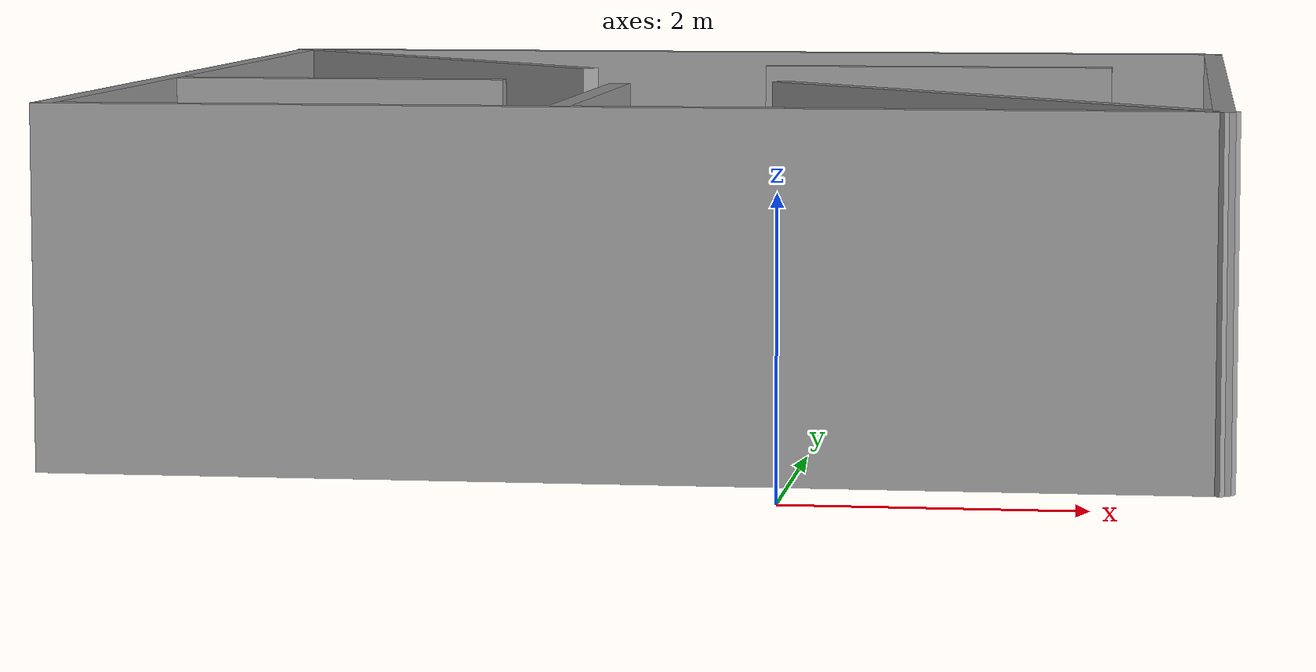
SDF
<?xml version='1.0'?>
<sdf version='1.7'>
  <model name='Untitled'>
    <pose>-1.10638 4.35755 0 0 -0 0</pose>
    <link name='Wall_36'>
      <collision name='Wall_36_Collision'>
        <geometry>
          <box>
            <size>8 0.15 2.5</size>
          </box>
        </geometry>
        <pose>0 0 1.25 0 -0 0</pose>
      </collision>
      <visual name='Wall_36_Visual'>
        <pose>0 0 1.25 0 -0 0</pose>
        <geometry>
          <box>
            <size>8 0.15 2.5</size>
          </box>
        </geometry>
        <material>
          <script>
            <uri>file://media/materials/scripts/gazebo.material</uri>
            <name>Gazebo/Grey</name>
          </script>
          <ambient>1 1 1 1</ambient>
        </material>
        <meta>
          <layer>0</layer>
        </meta>
      </visual>
      <pose>-3.925 0.326484 0 0 -0 -1.5708</pose>
    </link>
    <link name='Wall_37'>
      <collision name='Wall_37_Collision'>
        <geometry>
          <box>
            <size>8 0.15 2.5</size>
          </box>
        </geometry>
        <pose>0 0 1.25 0 -0 0</pose>
      </collision>
      <visual name='Wall_37_Visual'>
        <pose>0 0 1.25 0 -0 0</pose>
        <geometry>
          <box>
            <size>8 0.15 2.5</size>
          </box>
        </geometry>
        <material>
          <script>
            <uri>file://media/materials/scripts/gazebo.material</uri>
            <name>Gazebo/Grey</name>
          </script>
          <ambient>1 1 1 1</ambient>
        </material>
        <meta>
          <layer>0</layer>
        </meta>
      </visual>
      <pose>-0 -3.59852 0 0 -0 0</pose>
    </link>
    <link name='Wall_38'>
      <collision name='Wall_38_Collision'>
        <geometry>
          <box>
            <size>8 0.15 2.5</size>
          </box>
        </geometry>
        <pose>0 0 1.25 0 -0 0</pose>
      </collision>
      <visual name='Wall_38_Visual'>
        <pose>0 0 1.25 0 -0 0</pose>
        <geometry>
          <box>
            <size>8 0.15 2.5</size>
          </box>
        </geometry>
        <material>
          <script>
            <uri>file://media/materials/scripts/gazebo.material</uri>
            <name>Gazebo/Grey</name>
          </script>
          <ambient>1 1 1 1</ambient>
        </material>
        <meta>
          <layer>0</layer>
        </meta>
      </visual>
      <pose>3.925 0.326484 0 0 -0 1.5708</pose>
    </link>
    <link name='Wall_39'>
      <collision name='Wall_39_Collision'>
        <geometry>
          <box>
            <size>8 0.15 2.5</size>
          </box>
        </geometry>
        <pose>0 0 1.25 0 -0 0</pose>
      </collision>
      <visual name='Wall_39_Visual'>
        <pose>0 0 1.25 0 -0 0</pose>
        <geometry>
          <box>
            <size>8 0.15 2.5</size>
          </box>
        </geometry>
        <material>
          <script>
            <uri>file://media/materials/scripts/gazebo.material</uri>
            <name>Gazebo/Grey</name>
          </script>
          <ambient>1 1 1 1</ambient>
        </material>
        <meta>
          <layer>0</layer>
        </meta>
      </visual>
      <pose>-0 4.25148 0 0 -0 3.14159</pose>
    </link>
    <link name='Wall_40'>
      <collision name='Wall_40_Collision'>
        <geometry>
          <box>
            <size>4.25 0.15 2.5</size>
          </box>
        </geometry>
        <pose>0 0 1.25 0 -0 0</pose>
      </collision>
      <visual name='Wall_40_Visual'>
        <pose>0 0 1.25 0 -0 0</pose>
        <geometry>
          <box>
            <size>4.25 0.15 2.5</size>
          </box>
        </geometry>
        <material>
          <script>
            <uri>file://media/materials/scripts/gazebo.material</uri>
            <name>Gazebo/Grey</name>
          </script>
          <ambient>1 1 1 1</ambient>
        </material>
        <meta>
          <layer>0</layer>
        </meta>
      </visual>
      <pose>-2.47543 2.80192 0 0 -0 -0.785398</pose>
    </link>
    <link name='Wall_43'>
      <collision name='Wall_43_Collision'>
        <geometry>
          <box>
            <size>2.75 0.15 2.5</size>
          </box>
        </geometry>
        <pose>0 0 1.25 0 -0 0</pose>
      </collision>
      <visual name='Wall_43_Visual'>
        <pose>0 0 1.25 0 -0 0</pose>
        <geometry>
          <box>
            <size>2.75 0.15 2.5</size>
          </box>
        </geometry>
        <material>
          <script>
            <uri>file://media/materials/scripts/gazebo.material</uri>
            <name>Gazebo/Grey</name>
          </script>
          <ambient>1 1 1 1</ambient>
        </material>
        <meta>
          <layer>0</layer>
        </meta>
      </visual>
      <pose>-0.426988 -2.19059 0 0 -0 -1.5708</pose>
    </link>
    <link name='Wall_45'>
      <collision name='Wall_45_Collision'>
        <geometry>
          <box>
            <size>2.5 0.15 2.5</size>
          </box>
        </geometry>
        <pose>0 0 1.25 0 -0 0</pose>
      </collision>
      <visual name='Wall_45_Visual'>
        <pose>0 0 1.25 0 -0 0</pose>
        <geometry>
          <box>
            <size>2.5 0.15 2.5</size>
          </box>
        </geometry>
        <material>
          <script>
            <uri>file://media/materials/scripts/gazebo.material</uri>
            <name>Gazebo/Grey</name>
          </script>
          <ambient>1 1 1 1</ambient>
        </material>
        <meta>
          <layer>0</layer>
        </meta>
      </visual>
      <pose>-2.61008 -0.400873 0 0 -0 0</pose>
    </link>
    <link name='Wall_47'>
      <collision name='Wall_47_Collision'>
        <geometry>
          <box>
            <size>2.75 0.15 2.5</size>
          </box>
        </geometry>
        <pose>0 0 1.25 0 -0 0</pose>
      </collision>
      <visual name='Wall_47_Visual'>
        <pose>0 0 1.25 0 -0 0</pose>
        <geometry>
          <box>
            <size>2.75 0.15 2.5</size>
          </box>
        </geometry>
        <material>
          <script>
            <uri>file://media/materials/scripts/gazebo.material</uri>
            <name>Gazebo/Grey</name>
          </script>
          <ambient>1 1 1 1</ambient>
        </material>
        <meta>
          <layer>0</layer>
        </meta>
      </visual>
      <pose>1.73605 1.89033 0 0 -0 3.14159</pose>
    </link>
    <link name='Wall_49'>
      <collision name='Wall_49_Collision'>
        <geometry>
          <box>
            <size>4.61033 0.15 2.5</size>
          </box>
        </geometry>
        <pose>0 0 1.25 0 -0 0</pose>
      </collision>
      <visual name='Wall_49_Visual'>
        <pose>0 0 1.25 0 -0 0</pose>
        <geometry>
          <box>
            <size>4.61033 0.15 2.5</size>
          </box>
        </geometry>
        <material>
          <script>
            <uri>file://media/materials/scripts/gazebo.material</uri>
            <name>Gazebo/Grey</name>
          </script>
          <ambient>1 1 1 1</ambient>
        </material>
        <meta>
          <layer>0</layer>
        </meta>
      </visual>
      <pose>2.34367 -2.02593 0 0 -0 -0.782625</pose>
    </link>
    <static>1</static>
  </model>
</sdf>
